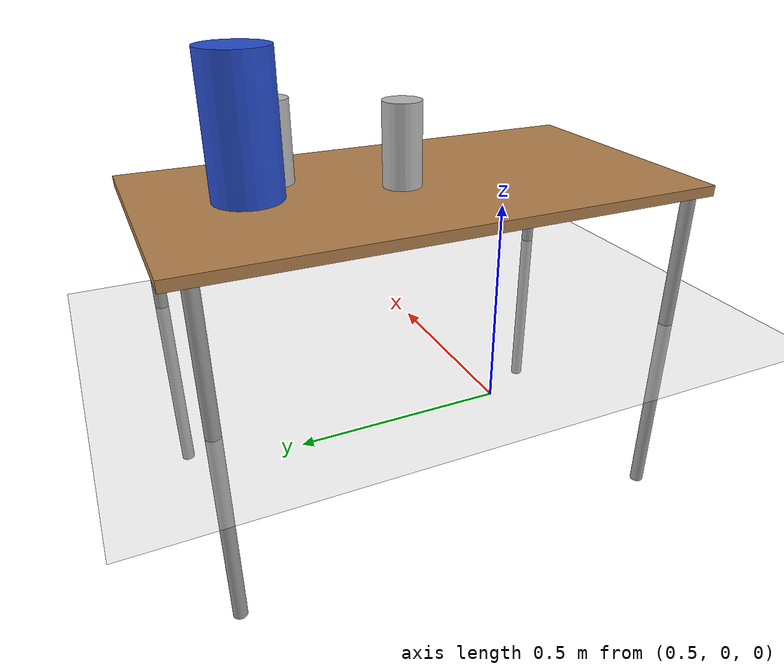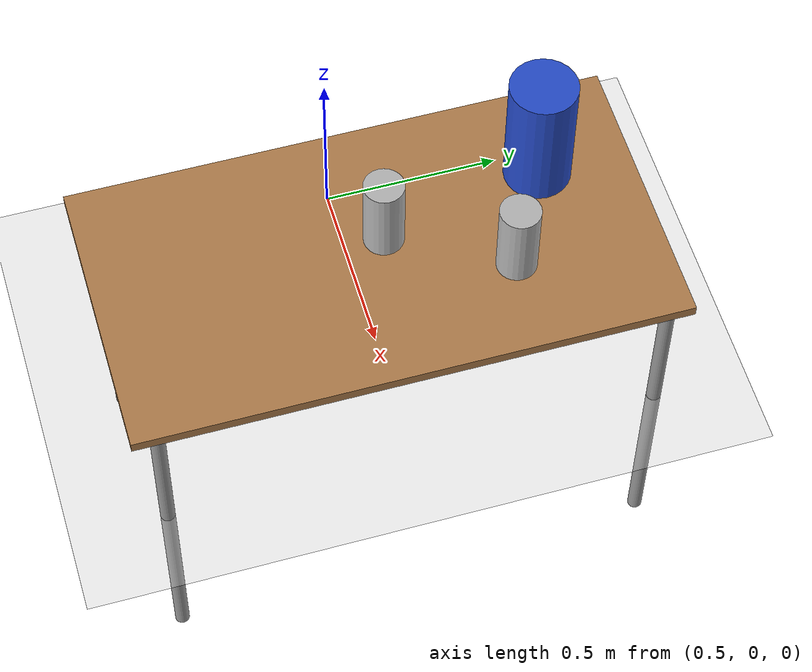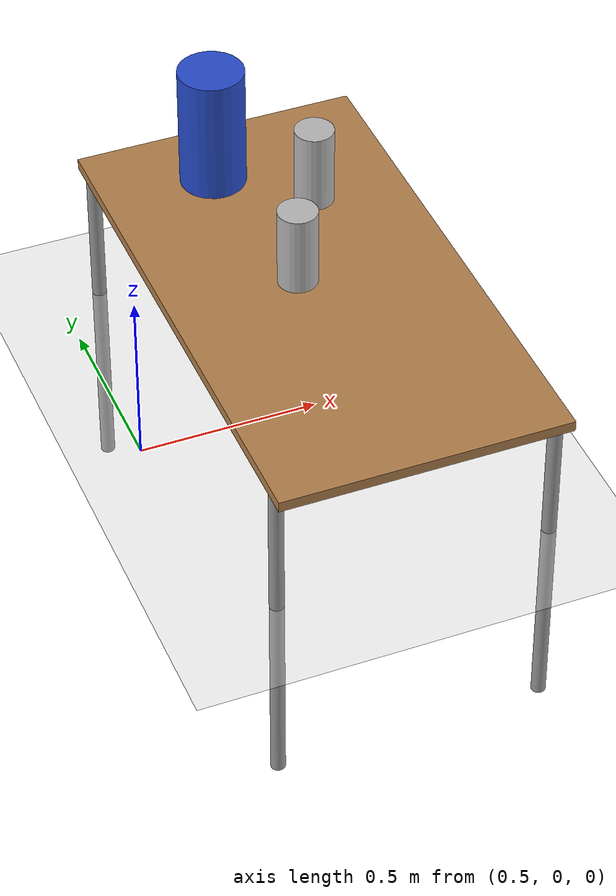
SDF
<sdf version="1.6">
 <world name="default">
  <light name="sun" type="directional">
   <pose>0 0 10 0 -0 0</pose>
   <diffuse>0.8 0.8 0.8 1</diffuse>
   <specular>0.2 0.2 0.2 1</specular>
   <attenuation>
    <range>1000</range>
    <constant>0.9</constant>
    <linear>0.01</linear>
    <quadratic>0.001</quadratic>
   </attenuation>
   <direction>-0.5 0.1 -0.9</direction>
  </light>
  <model name="ground_plane">
   <static>1</static>
   <link name="link">
    <collision name="collision">
     <geometry><plane><normal>0 0 1</normal><size>100 100</size></plane></geometry>
     <surface>
      <contact><collide_bitmask>65535</collide_bitmask></contact>
      <friction><ode><mu>100</mu><mu2>50</mu2></ode></friction>
     </surface>
    </collision>
    <visual name="visual">
     <cast_shadows>0</cast_shadows>
     <geometry><plane><normal>0 0 1</normal><size>100 100</size></plane></geometry>
     <material>
      <script><uri>file://media/materials/scripts/gazebo.material</uri><name>Gazebo/Grey</name></script>
     </material>
    </visual>
   </link>
  </model>
  <gravity>0 0 -9.8</gravity>
  <magnetic_field>6e-06 2.3e-05 -4.2e-05</magnetic_field>
  <atmosphere type="adiabatic"/>
  <physics name="default_physics" default="0" type="ode">
   <max_step_size>0.001</max_step_size>
   <real_time_factor>1</real_time_factor>
   <real_time_update_rate>1000</real_time_update_rate>
  </physics>
  <scene><ambient>0.4 0.4 0.4 1</ambient><background>0.7 0.7 0.7 1</background><shadows>1</shadows></scene>
  <spherical_coordinates>
   <surface_model>EARTH_WGS84</surface_model>
   <latitude_deg>0</latitude_deg>
   <longitude_deg>0</longitude_deg>
   <elevation>0</elevation>
   <heading_deg>0</heading_deg>
  </spherical_coordinates>
  <model name="table">
   <static>1</static>
   <link name="link">
    <collision name="surface">
     <pose>0 0 1 0 -0 0</pose>
     <geometry><box><size>1.5 0.8 0.03</size></box></geometry>
     <surface><friction><ode><mu>0.6</mu><mu2>0.6</mu2></ode></friction></surface>
    </collision>
    <visual name="visual1">
     <pose>0 0 1 0 -0 0</pose>
     <geometry><box><size>1.5 0.8 0.03</size></box></geometry>
     <material>
      <script><uri>file://media/materials/scripts/gazebo.material</uri><name>Gazebo/Wood</name></script>
     </material>
    </visual>
    <collision name="front_left_leg">
     <pose>0.68 0.38 0.5 0 -0 0</pose>
     <geometry><cylinder><radius>0.02</radius><length>1</length></cylinder></geometry>
    </collision>
    <visual name="front_left_leg">
     <pose>0.68 0.38 0.5 0 -0 0</pose>
     <geometry><cylinder><radius>0.02</radius><length>1</length></cylinder></geometry>
     <material>
      <script><uri>file://media/materials/scripts/gazebo.material</uri><name>Gazebo/Grey</name></script>
     </material>
    </visual>
    <collision name="front_right_leg">
     <pose>0.68 -0.38 0.5 0 -0 0</pose>
     <geometry><cylinder><radius>0.02</radius><length>1</length></cylinder></geometry>
    </collision>
    <visual name="front_right_leg">
     <pose>0.68 -0.38 0.5 0 -0 0</pose>
     <geometry><cylinder><radius>0.02</radius><length>1</length></cylinder></geometry>
     <material>
      <script><uri>file://media/materials/scripts/gazebo.material</uri><name>Gazebo/Grey</name></script>
     </material>
    </visual>
    <collision name="back_right_leg">
     <pose>-0.68 -0.38 0.5 0 -0 0</pose>
     <geometry><cylinder><radius>0.02</radius><length>1</length></cylinder></geometry>
    </collision>
    <visual name="back_right_leg">
     <pose>-0.68 -0.38 0.5 0 -0 0</pose>
     <geometry><cylinder><radius>0.02</radius><length>1</length></cylinder></geometry>
     <material>
      <script><uri>file://media/materials/scripts/gazebo.material</uri><name>Gazebo/Grey</name></script>
     </material>
    </visual>
    <collision name="back_left_leg">
     <pose>-0.68 0.38 0.5 0 -0 0</pose>
     <geometry><cylinder><radius>0.02</radius><length>1</length></cylinder></geometry>
    </collision>
    <visual name="back_left_leg">
     <pose>-0.68 0.38 0.5 0 -0 0</pose>
     <geometry><cylinder><radius>0.02</radius><length>1</length></cylinder></geometry>
     <material>
      <script><uri>file://media/materials/scripts/gazebo.material</uri><name>Gazebo/Grey</name></script>
     </material>
    </visual>
   </link>
   <pose>1 0 -0.595814 0 -0 1.5708</pose>
  </model>
  <model name="beer">
   <link name="link">
    <pose>0 0 0.115 0 -0 0</pose>
    <inertial>
     <mass>0.39</mass>
     <inertia><ixx>0.00058</ixx><ixy>0</ixy><ixz>0</ixz><iyy>0.00058</iyy><iyz>0</iyz><izz>0.00019</izz></inertia>
    </inertial>
    <collision name="collision">
     <geometry><cylinder><radius>0.055</radius><length>0.23</length></cylinder></geometry>
    </collision>
    <visual name="visual">
     <geometry><cylinder><radius>0.055</radius><length>0.23</length></cylinder></geometry>
     <material>
      <script>
       <uri>model://beer/materials/scripts</uri>
       <uri>model://beer/materials/textures</uri>
       <name>Beer/Diffuse</name>
      </script>
     </material>
    </visual>
   </link>
   <pose>0.964968 0.033337 0.419187 1.2e-05 8e-06 0.0025</pose>
  </model>
  <model name="beer_0">
   <link name="link">
    <pose>0 0 0.115 0 -0 0</pose>
    <inertial>
     <mass>0.39</mass>
     <inertia><ixx>0.00058</ixx><ixy>0</ixy><ixz>0</ixz><iyy>0.00058</iyy><iyz>0</iyz><izz>0.00019</izz></inertia>
    </inertial>
    <collision name="collision">
     <geometry><cylinder><radius>0.055</radius><length>0.23</length></cylinder></geometry>
    </collision>
    <visual name="visual">
     <geometry><cylinder><radius>0.055</radius><length>0.23</length></cylinder></geometry>
     <material>
      <script>
       <uri>model://beer/materials/scripts</uri>
       <uri>model://beer/materials/textures</uri>
       <name>Beer/Diffuse</name>
      </script>
     </material>
    </visual>
   </link>
   <pose>1.1378 0.345086 0.419176 -1e-05 4e-06 0.000153</pose>
  </model>
  <model name="mycan">
   <link name="link_0">
    <inertial>
     <mass>0.0117805</mass>
     <inertia>
      <ixx>0.00014828</ixx>
      <ixy>0</ixy>
      <ixz>0</ixz>
      <iyy>0.00014828</iyy>
      <iyz>0</iyz>
      <izz>4.884e-05</izz>
     </inertia>
    </inertial>
    <self_collide>1</self_collide>
    <kinematic>1</kinematic>
    <visual name="visual">
     <geometry><cylinder><radius>0.0910557</radius><length>0.355205</length></cylinder></geometry>
     <material>
      <lighting>1</lighting>
      <script><uri>file://media/materials/scripts/gazebo.material</uri><name>Gazebo/Blue</name></script>
      <shader type="pixel"><normal_map>__default__</normal_map></shader>
      <ambient>0 0 1 1</ambient>
      <diffuse>0 0 1 1</diffuse>
      <specular>0.1 0.1 0.1 1</specular>
      <emissive>0 0 0 1</emissive>
     </material>
    </visual>
    <collision name="collision">
     <geometry><cylinder><radius>0.091056</radius><length>0.355205</length></cylinder></geometry>
     <surface>
      <friction>
       <ode><mu>1</mu><mu2>1</mu2><fdir1>0 0 0</fdir1><slip1>0</slip1><slip2>0</slip2></ode>
       <torsional>
        <coefficient>1</coefficient>
        <patch_radius>0</patch_radius>
        <surface_radius>0</surface_radius>
        <use_patch_radius>1</use_patch_radius>
        <ode><slip>0</slip></ode>
       </torsional>
      </friction>
      <bounce><restitution_coefficient>0</restitution_coefficient><threshold>1e+06</threshold></bounce>
      <contact>
       <collide_without_contact>0</collide_without_contact>
       <collide_without_contact_bitmask>1</collide_without_contact_bitmask>
       <collide_bitmask>1</collide_bitmask>
       <ode>
        <soft_cfm>0</soft_cfm>
        <soft_erp>0.2</soft_erp>
        <kp>1e+13</kp>
        <kd>1</kd>
        <max_vel>0.01</max_vel>
        <min_depth>0</min_depth>
       </ode>
       <bullet>
        <split_impulse>1</split_impulse>
        <split_impulse_penetration_threshold>-0.01</split_impulse_penetration_threshold>
        <soft_cfm>0</soft_cfm>
        <soft_erp>0.2</soft_erp>
        <kp>1e+13</kp>
        <kd>1</kd>
       </bullet>
      </contact>
     </surface>
    </collision>
   </link>
   <static>0</static>
   <pose>0.896222 0.476891 0.639672 0 -0 0</pose>
  </model>
 </world>
</sdf>
